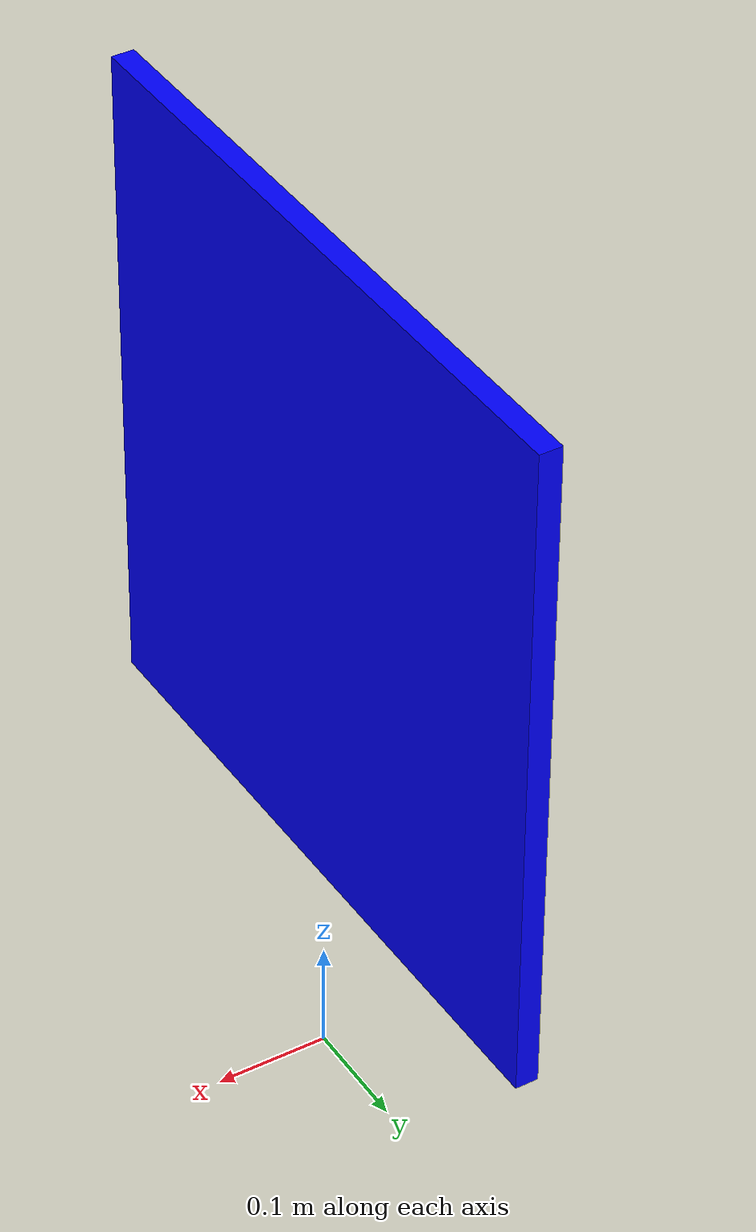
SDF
<?xml version='1.0'?>
<sdf version='1.6'>
  <model name='unit_box'>
    <link name='link'>
      <pose frame=''>0 0 .5 0 0 0</pose>
      <visual name='visual'>
        <geometry>
          <box>
            <size>0.02 .6 .6</size>
          </box>
        </geometry>
        <material>
          <ambient>0 0 1 1</ambient>
        </material>
        <pose frame=''>0 0 0 0 0 0</pose>
        <transparency>0</transparency>
        <cast_shadows>1</cast_shadows>
      </visual>
    </link>
    <static>1</static>
    <allow_auto_disable>1</allow_auto_disable>
  </model>
</sdf>
